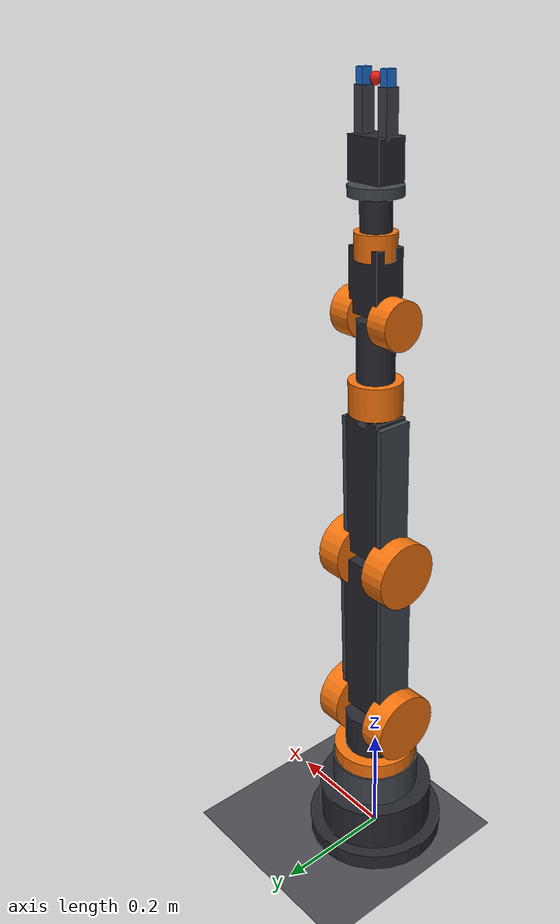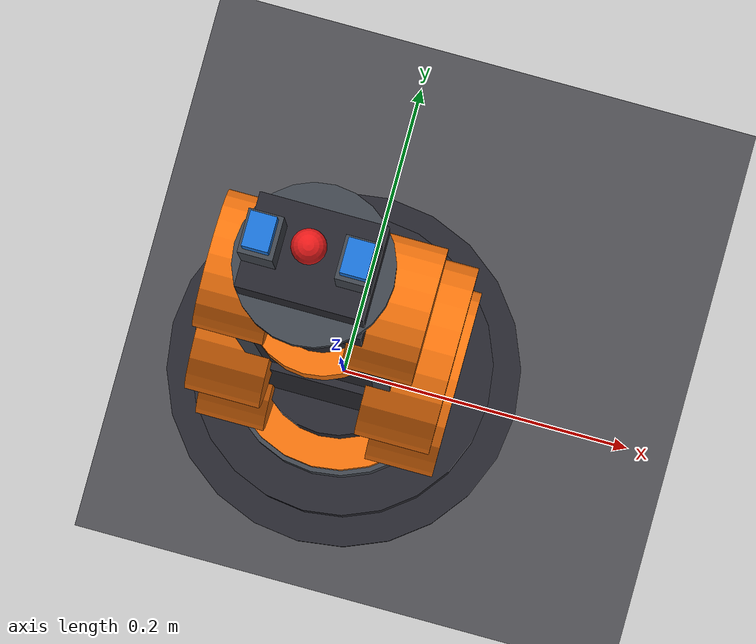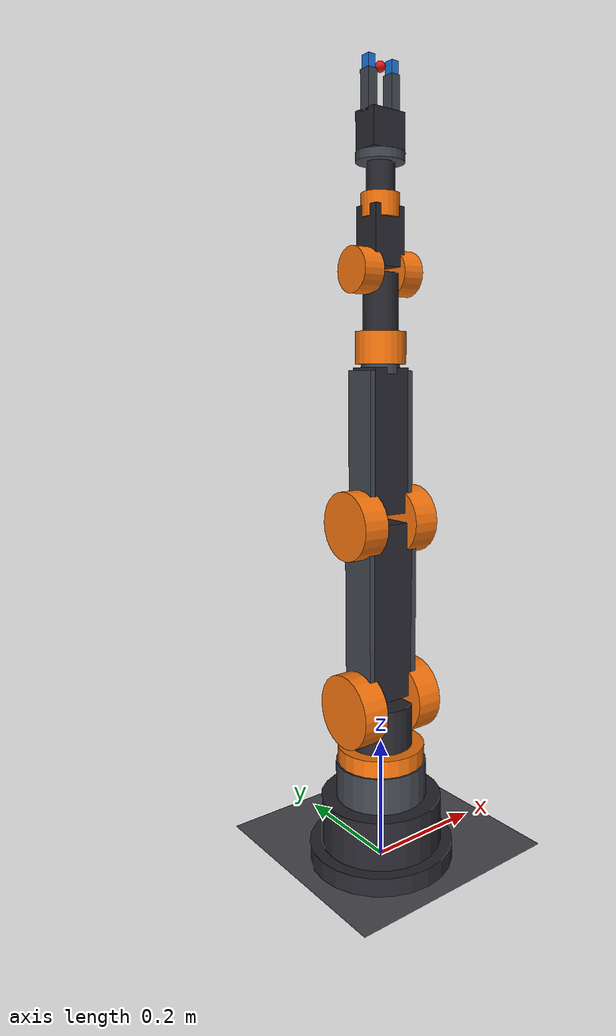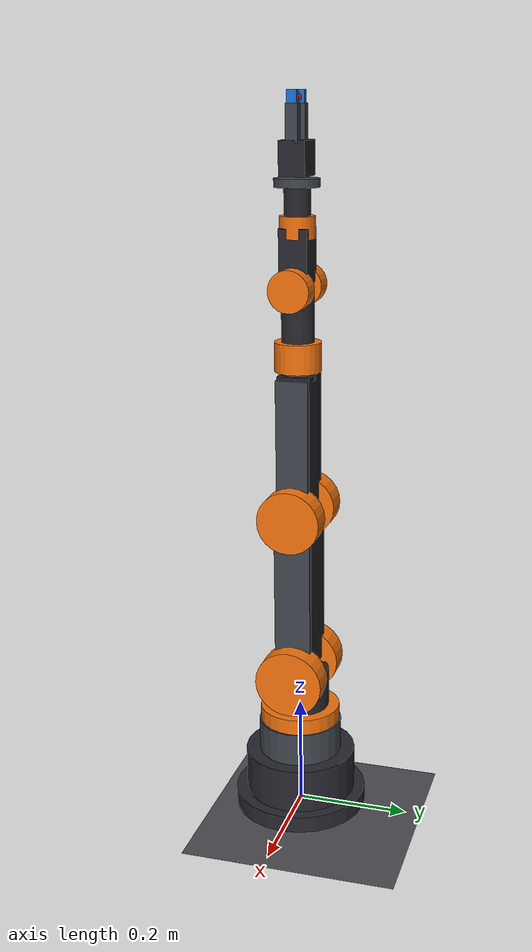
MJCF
<mujoco model="realistic_robot_arm">

  <compiler angle="radian" autolimits="true"/>

  <option timestep="0.002" gravity="0 0 -9.81" integrator="RK4"/>

  <visual>
    <headlight diffuse="0.8 0.8 0.8" ambient="0.3 0.3 0.3" specular="0.2 0.2 0.2"/>
    <global azimuth="150" elevation="-25"/>
  </visual>

  <asset>
    <material name="metal_dark"   rgba="0.15 0.15 0.18 1"/>
    <material name="metal_mid"    rgba="0.25 0.27 0.30 1"/>
    <material name="joint_orange" rgba="0.95 0.45 0.05 1"/>
    <material name="gripper_blue" rgba="0.10 0.45 0.85 1"/>
    <material name="floor_mat"    rgba="0.30 0.30 0.32 1"/>
    <material name="tcp_red"      rgba="0.90 0.10 0.10 1"/>
  </asset>

  <worldbody>

    <!-- Floor -->
    <geom name="floor" type="plane" size="2 2 0.05" pos="0 0 0" material="floor_mat" contype="1" conaffinity="1"/>

    <!-- ── MOUNTING PLATE ── -->
    <body name="mount_plate" pos="0 0 0">
      <geom name="mount_geom" type="cylinder" size="0.12 0.015" pos="0 0 0.015" material="metal_dark"/>

      <!-- ── J1 BASE PEDESTAL ── -->
      <body name="base_pedestal" pos="0 0 0.03">
        <geom name="base_lower" type="cylinder" size="0.10 0.04"  pos="0 0 0.04"  material="metal_dark"/>
        <geom name="base_upper" type="cylinder" size="0.075 0.03" pos="0 0 0.11"  material="metal_mid"/>

        <!-- ── J1: WAIST YAW ── -->
        <body name="link1_waist" pos="0 0 0.14">
          <joint name="j1_waist" type="hinge" axis="0 0 1" range="-3.14159 3.14159" damping="8" armature="0.05"/>
          <!-- waist housing -->
          <geom name="waist_hub"   type="cylinder" size="0.072 0.028" pos="0 0 0"     material="joint_orange"/>
          <geom name="waist_neck"  type="cylinder" size="0.052 0.045" pos="0 0 0.055" material="metal_dark"/>

          <!-- ── J2: SHOULDER PITCH ── -->
          <body name="link2_shoulder" pos="0 0 0.10">
            <joint name="j2_shoulder" type="hinge" axis="0 1 0" range="-1.5708 1.5708" damping="10" armature="0.08"/>
            <!-- shoulder hub left/right flanges -->
            <geom name="shoulder_hub_L" type="cylinder" size="0.060 0.022" pos=" 0.055 0 0" euler="0 1.5708 0" material="joint_orange"/>
            <geom name="shoulder_hub_R" type="cylinder" size="0.060 0.022" pos="-0.055 0 0" euler="0 1.5708 0" material="joint_orange"/>
            <!-- upper arm link — long rectangular link -->
            <geom name="upper_arm_link" type="box"      size="0.038 0.032 0.145" pos="0 0 0.155" material="metal_dark"/>
            <!-- cable channels on upper arm -->
            <geom name="ua_rib_F" type="box" size="0.005 0.032 0.14" pos=" 0.042 0 0.155" material="metal_mid"/>
            <geom name="ua_rib_B" type="box" size="0.005 0.032 0.14" pos="-0.042 0 0.155" material="metal_mid"/>

            <!-- ── J3: ELBOW PITCH ── -->
            <body name="link3_elbow" pos="0 0 0.30">
              <joint name="j3_elbow" type="hinge" axis="0 1 0" range="-2.0944 0.2618" damping="8" armature="0.06"/>
              <!-- elbow hub -->
              <geom name="elbow_hub_L" type="cylinder" size="0.055 0.022" pos=" 0.050 0 0" euler="0 1.5708 0" material="joint_orange"/>
              <geom name="elbow_hub_R" type="cylinder" size="0.055 0.022" pos="-0.050 0 0" euler="0 1.5708 0" material="joint_orange"/>
              <!-- forearm link -->
              <geom name="forearm_link"  type="box"    size="0.033 0.028 0.115" pos="0 0 0.130" material="metal_dark"/>
              <geom name="fa_rib_F"      type="box"    size="0.005 0.028 0.110" pos=" 0.037 0 0.130" material="metal_mid"/>
              <geom name="fa_rib_B"      type="box"    size="0.005 0.028 0.110" pos="-0.037 0 0.130" material="metal_mid"/>
              <!-- elbow-to-wrist connector -->
              <geom name="fa_connector"  type="cylinder" size="0.030 0.020" pos="0 0 0.255" material="metal_mid"/>

              <!-- ── J4: FOREARM ROLL ── -->
              <body name="link4_forearm_roll" pos="0 0 0.275">
                <joint name="j4_roll" type="hinge" axis="0 0 1" range="-3.14159 3.14159" damping="5" armature="0.03"/>
                <geom name="roll_hub"    type="cylinder" size="0.040 0.025" pos="0 0 0"     material="joint_orange"/>
                <geom name="roll_barrel" type="cylinder" size="0.028 0.045" pos="0 0 0.068" material="metal_dark"/>

                <!-- ── J5: WRIST PITCH ── -->
                <body name="link5_wrist_pitch" pos="0 0 0.115">
                  <joint name="j5_pitch" type="hinge" axis="0 1 0" range="-1.5708 1.5708" damping="4" armature="0.02"/>
                  <geom name="wrist_hub_L" type="cylinder" size="0.035 0.018" pos=" 0.038 0 0" euler="0 1.5708 0" material="joint_orange"/>
                  <geom name="wrist_hub_R" type="cylinder" size="0.035 0.018" pos="-0.038 0 0" euler="0 1.5708 0" material="joint_orange"/>
                  <geom name="wrist_body"  type="box"      size="0.028 0.024 0.045" pos="0 0 0.052" material="metal_dark"/>

                  <!-- ── J6: WRIST YAW (TOOL ROTATION) ── -->
                  <body name="link6_wrist_yaw" pos="0 0 0.098">
                    <joint name="j6_yaw" type="hinge" axis="0 0 1" range="-3.14159 3.14159" damping="3" armature="0.015"/>
                    <geom name="tool_hub"    type="cylinder" size="0.030 0.018" pos="0 0 0"     material="joint_orange"/>
                    <geom name="tool_neck"   type="cylinder" size="0.022 0.025" pos="0 0 0.040" material="metal_dark"/>
                    <!-- flange plate -->
                    <geom name="flange"      type="cylinder" size="0.038 0.007" pos="0 0 0.070" material="metal_mid"/>

                    <!-- ── GRIPPER BASE ── -->
                    <body name="gripper_base" pos="0 0 0.080">
                      <geom name="grip_palm"   type="box"      size="0.030 0.022 0.028" pos="0 0 0.028" material="metal_dark"/>
                      <geom name="grip_mount"  type="cylinder" size="0.018 0.010" pos="0 0 0.010" material="metal_mid"/>

                      <!-- LEFT FINGER -->
                      <body name="finger_left" pos=" 0.022 0 0.052">
                        <joint name="j7_finger_L" type="slide" axis="1 0 0" range="0 0.030" damping="2"/>
                        <geom name="fl_base"  type="box" size="0.008 0.010 0.030" pos="0 0 0.030" material="metal_mid"/>
                        <geom name="fl_tip"   type="box" size="0.006 0.008 0.012" pos="0 0 0.068" material="gripper_blue"/>
                      </body>

                      <!-- RIGHT FINGER -->
                      <body name="finger_right" pos="-0.022 0 0.052">
                        <joint name="j7_finger_R" type="slide" axis="-1 0 0" range="0 0.030" damping="2"/>
                        <geom name="fr_base"  type="box" size="0.008 0.010 0.030" pos="0 0 0.030" material="metal_mid"/>
                        <geom name="fr_tip"   type="box" size="0.006 0.008 0.012" pos="0 0 0.068" material="gripper_blue"/>
                      </body>

                      <!-- TCP Site -->
                      <site name="tcp" pos="0 0 0.120" size="0.008" rgba="0.9 0.1 0.1 1"/>

                    </body>
                  </body>
                </body>
              </body>
            </body>
          </body>
        </body>
      </body>
    </body>

  </worldbody>

  <!-- ════ ACTUATORS ════ -->
  <actuator>
    <motor name="act_j1_waist"    joint="j1_waist"    gear="200" ctrlrange="-3.14159 3.14159"/>
    <motor name="act_j2_shoulder" joint="j2_shoulder" gear="180" ctrlrange="-1.5708 1.5708"/>
    <motor name="act_j3_elbow"    joint="j3_elbow"    gear="150" ctrlrange="-2.0944 0.2618"/>
    <motor name="act_j4_roll"     joint="j4_roll"     gear="80"  ctrlrange="-3.14159 3.14159"/>
    <motor name="act_j5_pitch"    joint="j5_pitch"    gear="60"  ctrlrange="-1.5708 1.5708"/>
    <motor name="act_j6_yaw"      joint="j6_yaw"      gear="50"  ctrlrange="-3.14159 3.14159"/>
    <motor name="act_finger_L"    joint="j7_finger_L" gear="20"  ctrlrange="0 0.030"/>
    <motor name="act_finger_R"    joint="j7_finger_R" gear="20"  ctrlrange="0 0.030"/>
  </actuator>

  <!-- ════ SENSORS ════ -->
  <sensor>
    <jointpos name="s_j1" joint="j1_waist"/>
    <jointpos name="s_j2" joint="j2_shoulder"/>
    <jointpos name="s_j3" joint="j3_elbow"/>
    <jointpos name="s_j4" joint="j4_roll"/>
    <jointpos name="s_j5" joint="j5_pitch"/>
    <jointpos name="s_j6" joint="j6_yaw"/>
    <framepos name="s_tcp" objtype="site" objname="tcp"/>
  </sensor>

</mujoco>
